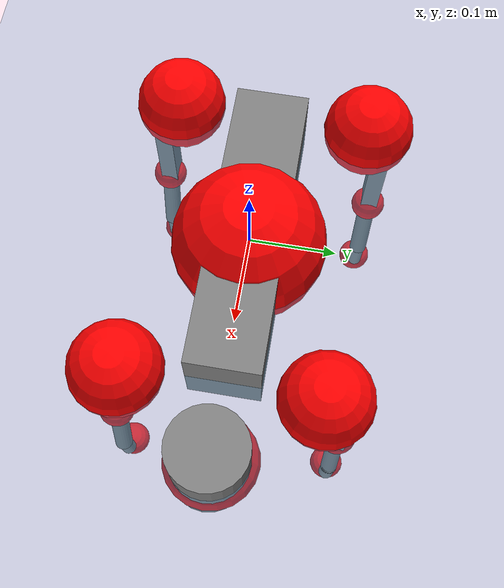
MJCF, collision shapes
<mujoco model="go2">
  <compiler angle="radian" assetdir="assets" balanceinertia="true" inertiafromgeom="false"/>

  <option timestep="0.005" density="1.2" viscosity="2e-05"/>

  <size nkey="1"/>

  <visual>
    <quality shadowsize="8192"/>
    <map shadowclip="0.5"/>
  </visual>

  <default>
    <default class="/">
      <geom contype="0" conaffinity="0" group="1" solref="-1000 -80"/>
      <site size="0.01 0.005 0.005" group="5"/>
      <general forcelimited="true" biastype="affine" gainprm="20" biasprm="0 -20 -0.5"/>
      <default class="go2">
        <joint armature="0.01" damping="0.01" frictionloss="0.2"/>
        <geom condim="1" margin="0.001"/>
        <default class="visual">
          <geom type="mesh" group="2"/>
        </default>
        <default class="collision">
          <geom group="3"/>
          <default class="foot">
            <geom size="0.022 0 0" condim="6" priority="1" friction="0.8 0.02 0.01" solimp="0.015 1 0.022"/>
          </default>
        </default>
        <default class="reward_collision_sphere">
          <geom group="5" rgba="1 0 0 1"/>
        </default>
      </default>
    </default>
  </default>

  <asset>
    <texture type="skybox" colorspace="auto" name="//unnamed_texture_0" builtin="gradient" rgb1="0.95 0.95 0.95" rgb2="0.95 0.95 0.95" width="100" height="600"/>
    <texture type="2d" colorspace="auto" name="texplane" builtin="checker" rgb1="0.345 0.575 0.748" rgb2="0.345 0.575 0.748" markrgb="1 1 1" width="512" height="512"/>
    <material name="MatPlane" class="/" texture="texplane" texuniform="true" texrepeat="2 2" specular="0.9"/>
    <material name="metal" class="/" rgba="0.9 0.95 0.95 1"/>
    <material name="black" class="/" rgba="0 0 0 1"/>
    <material name="white" class="/"/>
    <material name="gray" class="/" rgba="0.671705 0.692426 0.77427 1"/>
    <mesh name="base_0" class="/" file="base_0.obj"/>
    <mesh name="base_1" class="/" file="base_1.obj"/>
    <mesh name="base_2" class="/" file="base_2.obj"/>
    <mesh name="base_3" class="/" file="base_3.obj"/>
    <mesh name="base_4" class="/" file="base_4.obj"/>
    <mesh name="hip_0" class="/" file="hip_0.obj"/>
    <mesh name="hip_1" class="/" file="hip_1.obj"/>
    <mesh name="thigh_0" class="/" file="thigh_0.obj"/>
    <mesh name="thigh_1" class="/" file="thigh_1.obj"/>
    <mesh name="thigh_mirror_0" class="/" file="thigh_mirror_0.obj"/>
    <mesh name="thigh_mirror_1" class="/" file="thigh_mirror_1.obj"/>
    <mesh name="calf_0" class="/" file="calf_0.obj"/>
    <mesh name="calf_1" class="/" file="calf_1.obj"/>
    <mesh name="calf_mirror_0" class="/" file="calf_mirror_0.obj"/>
    <mesh name="calf_mirror_1" class="/" file="calf_mirror_1.obj"/>
    <mesh name="foot" class="/" file="foot.obj"/>
  </asset>

  <worldbody>
    <geom name="floor" class="/" size="100 100 0.125" type="plane" group="0" material="MatPlane"/>
    <light name="toplight_shadow" class="/" pos="0 0 5" dir="0.0990148 0.0990148 -0.990148" type="directional" ambient="0.04 0.04 0.04" diffuse="0.55 0.55 0.55" specular="0.12 0.12 0.12"/>
    <light name="toplight_fill" class="/" pos="0 0 5" dir="0.0990148 0.0990148 -0.990148" type="directional" castshadow="false" ambient="0.04 0.04 0.04" diffuse="0.3 0.3 0.3" specular="0.08 0.08 0.08"/>
    <body name="trunk" childclass="go2" pos="0.00020196 -0.000141055 -0.00283642" quat="1 8.65548e-06 -8.67044e-05 -7.71523e-06">
      <inertial pos="0.017631 0.00190453 -0.00181443" quat="-0.00102297 0.713077 -0.00192932 0.701082" mass="4.98159" diaginertia="0.0587751 0.0910373 0.00998502"/>
      <joint name="//unnamed_joint_0" type="free" armature="0" damping="0" frictionloss="0"/>
      <geom name="//unnamed_geom_1" class="visual" material="black" mesh="base_0"/>
      <geom name="//unnamed_geom_2" class="visual" material="black" mesh="base_1"/>
      <geom name="//unnamed_geom_3" class="visual" material="black" mesh="base_2"/>
      <geom name="//unnamed_geom_4" class="visual" material="white" mesh="base_3"/>
      <geom name="//unnamed_geom_5" class="visual" material="gray" mesh="base_4"/>
      <geom name="trunk_1" class="collision" size="0.170526 0.0423823 0.0516747" type="box"/>
      <geom name="trunk_2" class="collision" size="0.0453287 0.0407958" pos="0.252664 0 0.00839919" type="cylinder"/>
      <geom name="trunk_3" class="collision" size="0.0426089" pos="0.259757 0 -0.0503951"/>
      <geom name="//unnamed_geom_9" class="reward_collision_sphere" size="0.0906573"/>
      <geom name="//unnamed_geom_10" class="reward_collision_sphere" size="0.0543944" pos="0.248232 0 -0.0377963"/>
      <site name="imu" pos="-0.0171207 -0.0124031 0.0423893" size="0.00906573"/>
      <camera name="track" pos="0 -1.98652 0" quat="0.707107 0.707107 0 0" mode="trackcom"/>
      <camera name="ego_camera" pos="0.276601 0 0.0377963" quat="-0.5 -0.5 0.5 0.5"/>
      <body name="FL_hip" pos="0.171795 0.0436979 0.0019974" quat="1 5.81865e-06 -7.86421e-05 0.000143975">
        <inertial pos="-0.0072485 0.00254717 -0.00258453" quat="0.49569 0.500943 0.508144 0.495113" mass="0.500146" diaginertia="0.000481148 0.000554961 0.000205605"/>
        <joint name="FL_hip_joint" pos="0 0 0" axis="0.999989 0.00323578 0.0034133" range="-1.08416 1.04303" armature="0.0103458" damping="0.0180432" frictionloss="0.15723"/>
        <geom name="//unnamed_geom_11" class="visual" material="metal" mesh="hip_0"/>
        <geom name="//unnamed_geom_12" class="visual" material="gray" mesh="hip_1"/>
        <geom name="//unnamed_geom_13" class="collision" size="0.0417024 0.0181315" pos="0 0.0794607 0" quat="0.707107 0.707107 0 0" type="cylinder"/>
        <geom name="//unnamed_geom_14" class="reward_collision_sphere" size="0.0543944" pos="0 0.0695281 0"/>
        <body name="FL_thigh" pos="-0.000491095 0.0948539 0.00326322" quat="1 -0.000163842 -0.000134621 6.37277e-06">
          <inertial pos="-0.00366829 -0.0222534 -0.0297437" quat="0.830031 0.0856186 -0.0182798 0.550803" mass="0.833302" diaginertia="0.00324273 0.00566708 0.000348816"/>
          <joint name="FL_thigh_joint" pos="0 0 0" axis="0.00188362 0.999884 0.0150961" range="-1.62628 3.53226" armature="0.00917944" damping="0.00877952" frictionloss="0.171833"/>
          <geom name="//unnamed_geom_15" class="visual" material="metal" mesh="thigh_0"/>
          <geom name="//unnamed_geom_16" class="visual" material="gray" mesh="thigh_1"/>
          <geom name="//unnamed_geom_17" class="collision" size="0.0965501 0.0111055 0.0154117" pos="0 0 -0.0894514" quat="0.707107 0 0.707107 0" type="box"/>
          <body name="FL_calf" pos="-0.00353042 0.00207815 -0.176346" quat="0.999999 -0.000981041 0.000371101 0.000354699">
            <inertial pos="0.00656246 -0.000504682 -0.118445" quat="0.710226 0.000858754 -0.00433143 0.70396" mass="0.170694" diaginertia="0.000814844 0.00140015 2.11949e-05"/>
            <joint name="FL_calf_joint" pos="0 0 0" axis="0.00499995 0.999945 -0.00924339" range="-2.7439 -0.824022" armature="0.00830265" damping="0.0179207" frictionloss="0.155697"/>
            <geom name="//unnamed_geom_18" class="visual" material="gray" mesh="calf_0"/>
            <geom name="//unnamed_geom_19" class="visual" material="black" mesh="calf_1"/>
            <geom name="FL_calf0" class="collision" size="0.0108789 0.0543944" pos="0.00709233 0 -0.0503951" quat="0.994493 0 -0.104807 0" type="cylinder"/>
            <geom name="//unnamed_geom_21" class="collision" size="0.00997231 0.0294636" pos="0.0177308 0 -0.124308" quat="0.999688 0 0.0249974 0" type="cylinder"/>
            <geom name="//unnamed_geom_22" class="visual" pos="0 0 -0.178903" quat="1 0 0 0" material="black" mesh="foot"/>
            <geom name="FL_foot" class="foot" size="0.0182119" pos="-0.00177308 0 -0.178903"/>
            <geom name="//unnamed_geom_24" class="reward_collision_sphere" size="0.0226643"/>
            <geom name="//unnamed_geom_25" class="reward_collision_sphere" size="0.0226643" pos="-0.00177308 0 -0.178903"/>
            <site name="FL_foot" class="foot" pos="-0.00177308 0 -0.178903" size="0.00906573"/>
          </body>
        </body>
      </body>
      <body name="FR_hip" pos="0.174064 -0.0487287 0.000458621" quat="0.999999 -0.000849164 -0.00110972 -0.000588368">
        <inertial pos="-0.00435135 -0.0026553 0.000264396" quat="0.499979 0.503611 0.499288 0.4971" mass="0.494316" diaginertia="0.000474855 0.000543474 0.000200356"/>
        <joint name="FR_hip_joint" pos="0 0 0" axis="0.999996 0.00286074 0.000434031" stiffness="0.0130582" range="-0.994796 1.00573" armature="0.00896459" damping="0.0194659" frictionloss="0.156454"/>
        <geom name="//unnamed_geom_26" class="visual" pos="0 1.33584e-09 5.72968e-08" quat="4.63268e-05 1 0 0" material="metal" mesh="hip_0"/>
        <geom name="//unnamed_geom_27" class="visual" pos="0 2.16555e-09 -1.41717e-07" quat="4.63268e-05 1 0 0" material="gray" mesh="hip_1"/>
        <geom name="//unnamed_geom_28" class="collision" size="0.0417024 0.0181315" pos="0 -0.0794607 0" quat="0.707107 0.707107 0 0" type="cylinder"/>
        <geom name="//unnamed_geom_29" class="reward_collision_sphere" size="0.0543944" pos="0 -0.0695281 0"/>
        <body name="FR_thigh" pos="0.0019051 -0.0923961 -0.000588289" quat="1 0.000402893 -0.000340397 -8.67805e-05">
          <inertial pos="-0.00412716 0.0232331 -0.027332" quat="0.553396 -0.0204548 0.084636 0.828354" mass="0.849569" diaginertia="0.00322619 0.00561822 0.0003716"/>
          <joint name="FR_thigh_joint" pos="0 0 0" axis="0.003318 -0.999994 -0.00103257" range="-3.4643 1.52569" armature="0.00915564" damping="0" frictionloss="0.182654"/>
          <geom name="//unnamed_geom_30" class="visual" material="metal" mesh="thigh_mirror_0"/>
          <geom name="//unnamed_geom_31" class="visual" material="gray" mesh="thigh_mirror_1"/>
          <geom name="//unnamed_geom_32" class="collision" size="0.0965501 0.0111055 0.0154117" pos="0 0 -0.0894514" quat="0.707107 0 0.707107 0" type="box"/>
          <body name="FR_calf" pos="0.00208459 0.0010141 -0.175897" quat="1 0.000100935 0.000174559 8.70367e-05">
            <inertial pos="0.00428511 0.000856379 -0.117289" quat="0.703638 -0.00184891 0.00103064 0.710556" mass="0.178054" diaginertia="0.000846689 0.00142164 2.23058e-05"/>
            <joint name="FR_calf_joint" pos="0 0 0" axis="0.000457836 -1 0.000266468" range="0.847409 2.66716" armature="0.00880766" damping="0.00743885" frictionloss="0.169316"/>
            <geom name="//unnamed_geom_33" class="visual" material="gray" mesh="calf_mirror_0"/>
            <geom name="//unnamed_geom_34" class="visual" material="black" mesh="calf_mirror_1"/>
            <geom name="FR_calf0" class="collision" size="0.0117855 0.0543944" pos="0.00886542 0 -0.0503951" quat="0.995004 0 -0.0998334 0" type="cylinder"/>
            <geom name="//unnamed_geom_36" class="collision" size="0.00997231 0.0294636" pos="0.0177308 0 -0.124308" quat="0.999688 0 0.0249974 0" type="cylinder"/>
            <geom name="//unnamed_geom_37" class="visual" pos="0 0 -0.178903" quat="1 0 0 0" material="black" mesh="foot"/>
            <geom name="FR_foot" class="foot" size="0.022185" pos="-0.00177308 0 -0.178903"/>
            <geom name="//unnamed_geom_39" class="reward_collision_sphere" size="0.0226643"/>
            <geom name="//unnamed_geom_40" class="reward_collision_sphere" size="0.0226643" pos="-0.00177308 0 -0.178903"/>
            <site name="FR_foot" class="foot" pos="-0.00177308 0 -0.178903" size="0.00906573"/>
          </body>
        </body>
      </body>
      <body name="RL_hip" pos="-0.171103 0.0491752 0.000797644" quat="1 0.000287301 -6.15403e-05 0.000927163">
        <inertial pos="0.00252399 -0.000415991 -0.00052971" quat="0.501281 0.500467 0.497323 0.500919" mass="0.497392" diaginertia="0.000490163 0.000595846 0.000195708"/>
        <joint name="RL_hip_joint" pos="0 0 0" axis="-0.999688 0.0212574 -0.0131348" range="-1.05084 1.00102" armature="0.00892909" damping="0" frictionloss="0.202469"/>
        <geom name="//unnamed_geom_41" class="visual" pos="-4.0616e-10 0 -7.96167e-08" quat="4.63268e-05 0 1 0" material="metal" mesh="hip_0"/>
        <geom name="//unnamed_geom_42" class="visual" pos="-6.58434e-10 0 -7.06087e-08" quat="4.63268e-05 0 1 0" material="gray" mesh="hip_1"/>
        <geom name="//unnamed_geom_43" class="collision" size="0.0417024 0.0181315" pos="0 0.0794607 0" quat="0.707107 0.707107 0 0" type="cylinder"/>
        <geom name="//unnamed_geom_44" class="reward_collision_sphere" size="0.0543944" pos="0 0.0695281 0"/>
        <body name="RL_thigh" pos="0.000876803 0.0919796 8.13887e-05" quat="0.999999 -0.000675578 0.000213396 -0.00106764">
          <inertial pos="-0.00432185 -0.0247628 -0.0275998" quat="0.826753 0.0904868 -0.0180259 0.554948" mass="0.851274" diaginertia="0.00337386 0.00561734 0.000387556"/>
          <joint name="RL_thigh_joint" pos="0 0 0" axis="-0.00226808 0.999995 -0.00216723" stiffness="0.0150018" range="-0.519067 4.53352" armature="0.00890557" damping="0.00108519" frictionloss="0.178776"/>
          <geom name="//unnamed_geom_45" class="visual" material="metal" mesh="thigh_0"/>
          <geom name="//unnamed_geom_46" class="visual" material="gray" mesh="thigh_1"/>
          <geom name="//unnamed_geom_47" class="collision" size="0.0965501 0.0111055 0.0154117" pos="0 0 -0.0894514" quat="0.707107 0 0.707107 0" type="box"/>
          <body name="RL_calf" pos="0.00278526 -0.000510255 -0.178381" quat="0.999999 -0.000730854 -0.000954609 -0.000775018">
            <inertial pos="0.0083916 -0.00127997 -0.121479" quat="0.710817 0.001336 -0.00489418 0.703358" mass="0.176502" diaginertia="0.000818267 0.00147361 2.27841e-05"/>
            <joint name="RL_calf_joint" pos="0 0 0" axis="0.00257458 0.999872 -0.0157948" range="-2.71528 -0.855099" armature="0.00883497" damping="0.0149876" frictionloss="0.201245"/>
            <geom name="//unnamed_geom_48" class="visual" material="gray" mesh="calf_0"/>
            <geom name="//unnamed_geom_49" class="visual" material="black" mesh="calf_1"/>
            <geom name="RL_calf0" class="collision" size="0.0117855 0.0543944" pos="0.00886542 0 -0.0503951" quat="0.995004 0 -0.0998334 0" type="cylinder"/>
            <geom name="//unnamed_geom_51" class="collision" size="0.00997231 0.0294636" pos="0.0177308 0 -0.124308" quat="0.999688 0 0.0249974 0" type="cylinder"/>
            <geom name="//unnamed_geom_52" class="visual" pos="0 0 -0.178903" quat="1 0 0 0" material="black" mesh="foot"/>
            <geom name="RL_foot" class="foot" size="0.0168731" pos="-0.00177308 0 -0.178903"/>
            <geom name="//unnamed_geom_54" class="reward_collision_sphere" size="0.0226643"/>
            <geom name="//unnamed_geom_55" class="reward_collision_sphere" size="0.0226643" pos="-0.00177308 0 -0.178903"/>
            <site name="RL_foot" class="foot" pos="-0.00177308 0 -0.178903" size="0.00906573"/>
          </body>
        </body>
      </body>
      <body name="RR_hip" pos="-0.172111 -0.0435679 0.000665918" quat="0.999999 -5.23878e-05 0.00113258 -0.000201045">
        <inertial pos="0.00430156 0.000458744 -0.00173948" quat="0.496365 0.497249 0.503784 0.50256" mass="0.485634" diaginertia="0.000483162 0.000540687 0.000194369"/>
        <joint name="RR_hip_joint" pos="0 0 0" axis="-0.999929 -0.0102539 -0.00604523" range="-1.10052 1.04213" armature="0.00783269" damping="0" frictionloss="0.205939"/>
        <geom name="//unnamed_geom_56" class="visual" pos="4.09855e-10 1.33584e-09 -1.36914e-07" quat="2.14617e-09 4.63268e-05 4.63268e-05 -1" material="metal" mesh="hip_0"/>
        <geom name="//unnamed_geom_57" class="visual" pos="6.49296e-10 2.16555e-09 7.11083e-08" quat="2.14617e-09 4.63268e-05 4.63268e-05 -1" material="gray" mesh="hip_1"/>
        <geom name="//unnamed_geom_58" class="collision" size="0.0417024 0.0181315" pos="0 -0.0794607 0" quat="0.707107 0.707107 0 0" type="cylinder"/>
        <geom name="//unnamed_geom_59" class="reward_collision_sphere" size="0.0543944" pos="0 -0.0695281 0"/>
        <body name="RR_thigh" pos="0.000953349 -0.0958037 -0.00165212" quat="1 -8.73132e-05 0.000139832 6.51142e-05">
          <inertial pos="-0.00308563 0.0234373 -0.0249528" quat="0.556878 -0.00821307 0.0806784 0.826626" mass="0.844596" diaginertia="0.00323658 0.00555172 0.000366321"/>
          <joint name="RR_thigh_joint" pos="0 0 0" axis="-0.00629568 -0.999967 -0.0052064" stiffness="0.0110292" range="-4.50497 0.480201" armature="0.00974602" damping="0.0168916" frictionloss="0.188201"/>
          <geom name="//unnamed_geom_60" class="visual" material="metal" mesh="thigh_mirror_0"/>
          <geom name="//unnamed_geom_61" class="visual" material="gray" mesh="thigh_mirror_1"/>
          <geom name="//unnamed_geom_62" class="collision" size="0.0965501 0.0111055 0.0154117" pos="0 0 -0.0894514" quat="0.707107 0 0.707107 0" type="box"/>
          <body name="RR_calf" pos="0.000388841 -0.00292087 -0.179913" quat="0.999999 0.000863588 -8.40683e-05 0.0011932">
            <inertial pos="0.00760216 0.000586982 -0.119562" quat="0.705672 -0.00157352 0.00975679 0.70847" mass="0.169666" diaginertia="0.000787287 0.00136279 2.19074e-05"/>
            <joint name="RR_calf_joint" pos="0 0 0" axis="-0.00898928 -0.999957 0.00211096" stiffness="0.00721513" range="0.89102 2.77312" armature="0.00929764" damping="0.0159167" frictionloss="0.17285"/>
            <geom name="//unnamed_geom_63" class="visual" material="gray" mesh="calf_mirror_0"/>
            <geom name="//unnamed_geom_64" class="visual" material="black" mesh="calf_mirror_1"/>
            <geom name="RR_calf0" class="collision" size="0.0117855 0.0543944" pos="0.00886542 0 -0.0503951" quat="0.995004 0 -0.0998334 0" type="cylinder"/>
            <geom name="//unnamed_geom_66" class="collision" size="0.00997231 0.0294636" pos="0.0177308 0 -0.124308" quat="0.999688 0 0.0249974 0" type="cylinder"/>
            <geom name="//unnamed_geom_67" class="visual" pos="0 0 -0.178903" quat="1 0 0 0" material="black" mesh="foot"/>
            <geom name="RR_foot" class="foot" size="0.019588" pos="-0.00177308 0 -0.178903"/>
            <geom name="//unnamed_geom_69" class="reward_collision_sphere" size="0.0226643"/>
            <geom name="//unnamed_geom_70" class="reward_collision_sphere" size="0.0226643" pos="-0.00177308 0 -0.178903"/>
            <site name="RR_foot" class="foot" pos="-0.00177308 0 -0.178903" size="0.00906573"/>
          </body>
        </body>
      </body>
    </body>
  </worldbody>

  <contact>
    <pair class="/" geom1="floor" geom2="FL_foot" name="//unnamed_contact_0"/>
    <pair class="/" geom1="floor" geom2="FR_foot" name="//unnamed_contact_1"/>
    <pair class="/" geom1="floor" geom2="RL_foot" name="//unnamed_contact_2"/>
    <pair class="/" geom1="floor" geom2="RR_foot" name="//unnamed_contact_3"/>
  </contact>

  <actuator>
    <general name="FL_hip" class="/" joint="FL_hip_joint" forcerange="-19.4303 19.4303" gainprm="19.1307" biasprm="0 -19.1307 -0.473148"/>
    <general name="FL_thigh" class="/" joint="FL_thigh_joint" forcerange="-20.4232 20.4232" gainprm="19.1307" biasprm="0 -19.1307 -0.473148"/>
    <general name="FL_calf" class="/" joint="FL_calf_joint" forcerange="-41.4931 41.4931" gainprm="19.1307" biasprm="0 -19.1307 -0.473148"/>
    <general name="FR_hip" class="/" joint="FR_hip_joint" forcerange="-20.9654 20.9654" gainprm="19.1307" biasprm="0 -19.1307 -0.473148"/>
    <general name="FR_thigh" class="/" joint="FR_thigh_joint" forcerange="-22.4563 22.4563" gainprm="19.1307" biasprm="0 -19.1307 -0.473148"/>
    <general name="FR_calf" class="/" joint="FR_calf_joint" forcerange="-38.003 38.003" gainprm="19.1307" biasprm="0 -19.1307 -0.473148"/>
    <general name="RL_hip" class="/" joint="RL_hip_joint" forcerange="-23.7194 23.7194" gainprm="19.1307" biasprm="0 -19.1307 -0.473148"/>
    <general name="RL_thigh" class="/" joint="RL_thigh_joint" forcerange="-21.5491 21.5491" gainprm="19.1307" biasprm="0 -19.1307 -0.473148"/>
    <general name="RL_calf" class="/" joint="RL_calf_joint" forcerange="-37.4616 37.4616" gainprm="19.1307" biasprm="0 -19.1307 -0.473148"/>
    <general name="RR_hip" class="/" joint="RR_hip_joint" forcerange="-20.2986 20.2986" gainprm="19.1307" biasprm="0 -19.1307 -0.473148"/>
    <general name="RR_thigh" class="/" joint="RR_thigh_joint" forcerange="-22.0164 22.0164" gainprm="19.1307" biasprm="0 -19.1307 -0.473148"/>
    <general name="RR_calf" class="/" joint="RR_calf_joint" forcerange="-42.0976 42.0976" gainprm="19.1307" biasprm="0 -19.1307 -0.473148"/>
  </actuator>

  <sensor>
    <gyro site="imu" name="imu_angular_velocity"/>
    <velocimeter site="imu" name="imu_linear_velocity"/>
    <framelinvel objtype="site" objname="FL_foot" name="FL_foot_global_linear_velocity"/>
    <framelinvel objtype="site" objname="FR_foot" name="FR_foot_global_linear_velocity"/>
    <framelinvel objtype="site" objname="RL_foot" name="RL_foot_global_linear_velocity"/>
    <framelinvel objtype="site" objname="RR_foot" name="RR_foot_global_linear_velocity"/>
  </sensor>

  <keyframe>
    <key name="home" qpos="0 0 0.325 1 0 0 0 0.1 0.8 -1.5 -0.1 -0.8 1.5 -0.1 0.8 -1.5 0.1 -0.8 1.5"/>
  </keyframe>
</mujoco>
